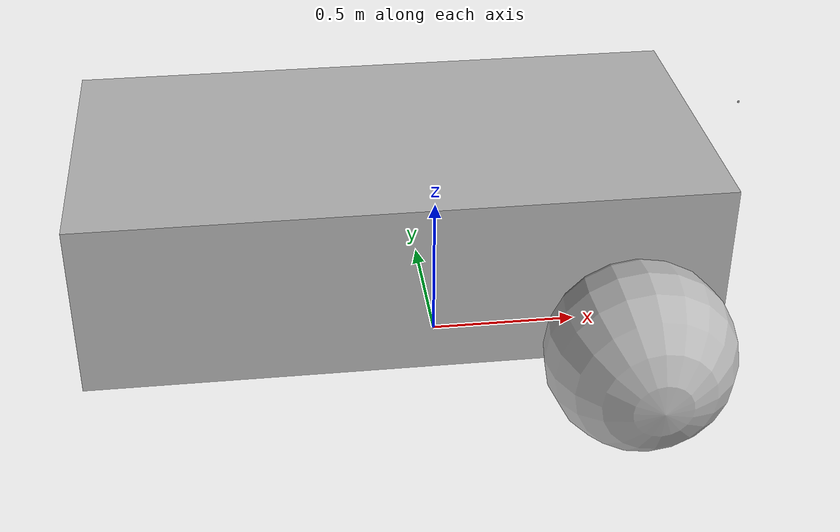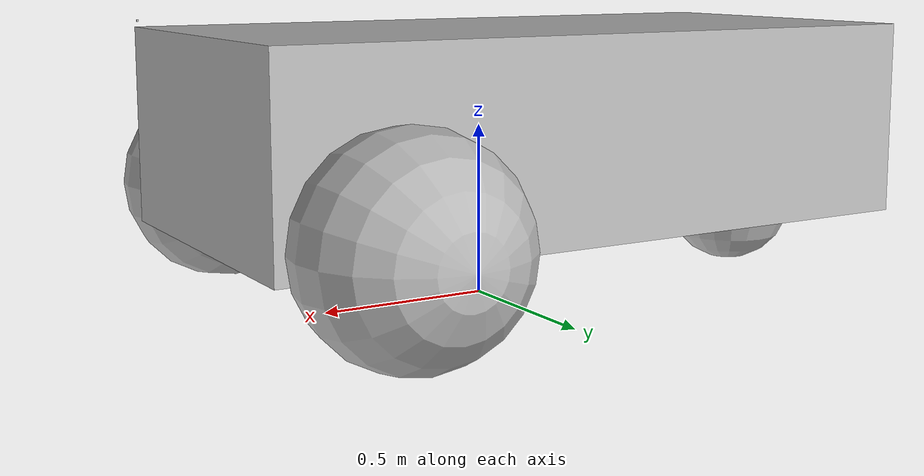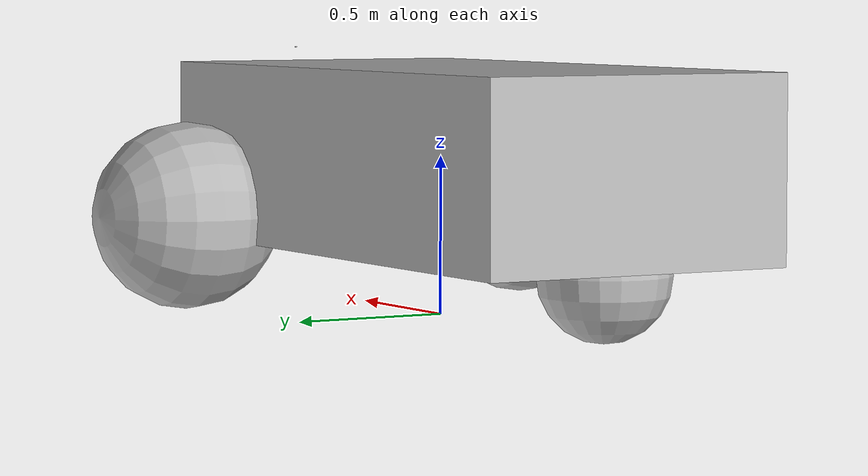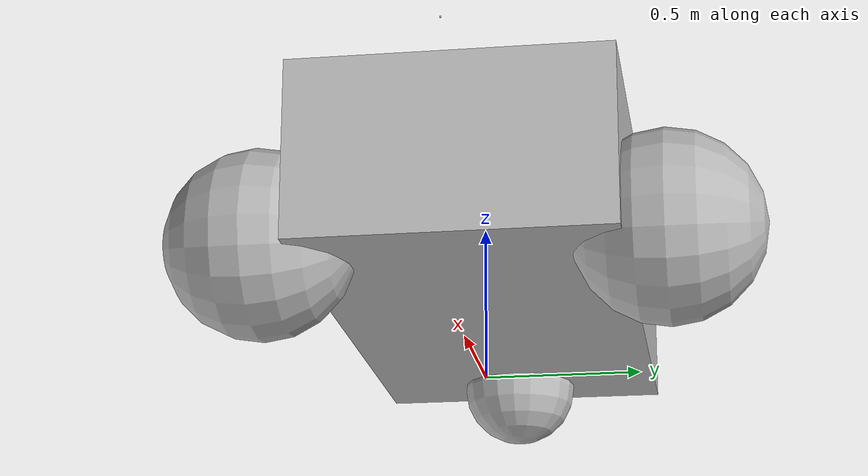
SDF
<?xml version="1.0"?>
<sdf version="1.6">
    <model name="vehicle">
			<pose>
				0 0 0.325 0 -0 0
			</pose>
			<link name="chassis">
				<pose>
					-0.151427 -0 0.175 0 -0 0
				</pose>
				<inertial>
					<mass>
						1.14395
					</mass>
					<inertia>
						<ixx>
							0.126164
						</ixx>
						<ixy>
							0
						</ixy>
						<ixz>
							0
						</ixz>
						<iyy>
							0.416519
						</iyy>
						<iyz>
							0
						</iyz>
						<izz>
							0.481014
						</izz>
					</inertia>
				</inertial>
				<visual name="visual">
					<geometry>
						<box>
							<size>
								2.01142 1 0.568726
							</size>
						</box>
					</geometry>
				</visual>
				<collision name="collision">
					<geometry>
						<box>
							<size>
								2.01142 1 0.568726
							</size>
						</box>
					</geometry>
				</collision>
			</link>
			<link name="left_wheel">
				<pose>
					0.554283 0.625029 -0.025 -1.5707 0 0
				</pose>
				<inertial>
					<mass>
						2
					</mass>
					<inertia>
						<ixx>
							0.145833
						</ixx>
						<ixy>
							0
						</ixy>
						<ixz>
							0
						</ixz>
						<iyy>
							0.145833
						</iyy>
						<iyz>
							0
						</iyz>
						<izz>
							0.125
						</izz>
					</inertia>
				</inertial>
				<visual name="visual">
					<geometry>
						<sphere>
							<radius>
								0.3
							</radius>
						</sphere>
					</geometry>
				</visual>
				<collision name="collision">
					<geometry>
						<sphere>
							<radius>
								0.3
							</radius>
						</sphere>
					</geometry>
					<surface>
						<friction>
							<ode>
								<mu>
									1
								</mu>
								<mu2>
									1
								</mu2>
								<slip1>
									0
								</slip1>
								<slip2>
									0
								</slip2>
							</ode>
						</friction>
						<contact>
							<ode>
								<soft_cfm>
									0
								</soft_cfm>
								<soft_erp>
									0.2
								</soft_erp>
								<kp>
									1e+13
								</kp>
								<kd>
									1
								</kd>
								<max_vel>
									0.01
								</max_vel>
								<min_depth>
									0.01
								</min_depth>
							</ode>
						</contact>
					</surface>
				</collision>
			</link>
			<link name="right_wheel">
				<pose>
					0.554282 -0.625029 -0.025 -1.5707 0 0
				</pose>
				<inertial>
					<mass>
						2
					</mass>
					<inertia>
						<ixx>
							0.145833
						</ixx>
						<ixy>
							0
						</ixy>
						<ixz>
							0
						</ixz>
						<iyy>
							0.145833
						</iyy>
						<iyz>
							0
						</iyz>
						<izz>
							0.125
						</izz>
					</inertia>
				</inertial>
				<visual name="visual">
					<geometry>
						<sphere>
							<radius>
								0.3
							</radius>
						</sphere>
					</geometry>
				</visual>
				<collision name="collision">
					<geometry>
						<sphere>
							<radius>
								0.3
							</radius>
						</sphere>
					</geometry>
					<surface>
						<friction>
							<ode>
								<mu>
									1
								</mu>
								<mu2>
									1
								</mu2>
								<slip1>
									0
								</slip1>
								<slip2>
									0
								</slip2>
							</ode>
						</friction>
						<contact>
							<ode>
								<soft_cfm>
									0
								</soft_cfm>
								<soft_erp>
									0.2
								</soft_erp>
								<kp>
									1e+13
								</kp>
								<kd>
									1
								</kd>
								<max_vel>
									0.01
								</max_vel>
								<min_depth>
									0.01
								</min_depth>
							</ode>
						</contact>
					</surface>
				</collision>
			</link>
			<link name="caster">
				<pose>
					-0.957138 -0 -0.125 0 -0 0
				</pose>
				<inertial>
					<mass>
						1
					</mass>
					<inertia>
						<ixx>
							0.1
						</ixx>
						<ixy>
							0
						</ixy>
						<ixz>
							0
						</ixz>
						<iyy>
							0.1
						</iyy>
						<iyz>
							0
						</iyz>
						<izz>
							0.1
						</izz>
					</inertia>
				</inertial>
				<visual name="visual">
					<geometry>
						<sphere>
							<radius>
								0.2
							</radius>
						</sphere>
					</geometry>
				</visual>
				<collision name="collision">
					<geometry>
						<sphere>
							<radius>
								0.2
							</radius>
						</sphere>
					</geometry>
				</collision>
			</link>
			<link name="camera_link">
				<pose frame="">
					1 0 0.5 0 -0 0
				</pose>
				<inertial>
					<inertia>
						<ixx>
							1
						</ixx>
						<ixy>
							0
						</ixy>
						<ixz>
							0
						</ixz>
						<iyy>
							1
						</iyy>
						<iyz>
							0
						</iyz>
						<izz>
							1
						</izz>
					</inertia>
					<mass>
						1.0
					</mass>
				</inertial>
				<collision name="my_collision">
					<pose>
						0 0 0.5 0 0 0
					</pose>
					<geometry>
						<box>
							<size>
								1 1 1
							</size>
						</box>
					</geometry>
				</collision>
				<visual name="my_visual">
					<geometry>
						<box>
							<size>
								0.005 0.005 0.005
							</size>
						</box>
					</geometry>
				</visual>
				<sensor type="camera" name="my_camera">
					<camera>
						<horizontal_fov>
							2.547
						</horizontal_fov>
						<image>
							<width>
								800
							</width>
							<height>
								600
							</height>
						</image>
						<clip>
							<near>
								0.01
							</near>
							<far>
								100
							</far>
						</clip>
					</camera>
					<always_on>
						1
					</always_on>
					<update_rate>
						10
					</update_rate>
					<visualize>
						true
					</visualize>
					<plugin name="camera_controller" filename="libgazebo_ros_camera.so">
						<alwaysOn>
							true
						</alwaysOn>
						<updateRate>
							0.0
						</updateRate>
						<cameraName>
							vehicle_camera
						</cameraName>
						<imageTopicName>
							image_raw
						</imageTopicName>
						<cameraInfoTopicName>
							camera_info
						</cameraInfoTopicName>
						<frameName>
							camera_link
						</frameName>
						<hackBaseline>
							0.07
						</hackBaseline>
						<distortionK1>
							0.0
						</distortionK1>
						<distortionK2>
							0.0
						</distortionK2>
						<distortionK3>
							0.0
						</distortionK3>
						<distortionT1>
							0.0
						</distortionT1>
						<distortionT2>
							0.0
						</distortionT2>
					</plugin>
				</sensor>
			</link>
			<joint name="camera_joint" type="fixed">
				<child>
					camera_link
				</child>
				<parent>
					chassis
				</parent>
			</joint>
			<joint name="left_wheel_joint" type="revolute">
				<parent>
					chassis
				</parent>
				<child>
					left_wheel
				</child>
				<axis>
					<xyz>
						0 0 1
					</xyz>
					<limit>
						<lower>
							-1.79769e+308
						</lower>
						<upper>
							1.79769e+308
						</upper>
					</limit>
				</axis>
			</joint>
			<joint name="right_wheel_joint" type="revolute">
				<parent>
					chassis
				</parent>
				<child>
					right_wheel
				</child>
				<axis>
					<xyz>
						0 0 1
					</xyz>
					<limit>
						<lower>
							-1.79769e+308
						</lower>
						<upper>
							1.79769e+308
						</upper>
					</limit>
				</axis>
			</joint>
			<joint name="caster_wheel" type="ball">
				<parent>
					chassis
				</parent>
				<child>
					caster
				</child>
			</joint>
			<plugin name="differential_drive_controller" filename="libgazebo_ros_diff_drive2.so">
				<robotNamespace />
				<alwaysOn>
					true
				</alwaysOn>
				<updateRate>
					10
				</updateRate>
				<legacyMode>
					true
				</legacyMode>
				<leftJoint>
					left_wheel_joint
				</leftJoint>
				<rightJoint>
					right_wheel_joint
				</rightJoint>
				<wheelSeparation>
					0.5380
				</wheelSeparation>
				<wheelDiameter>
					0.2410
				</wheelDiameter>
				<torque>
					20
				</torque>
				<commandTopic>
					cmd_vel
				</commandTopic>
				<odometryTopic>
					odom
				</odometryTopic>
				<odometryFrame>
					odom
				</odometryFrame>
				<robotBaseFrame>
					chassis
				</robotBaseFrame>
				<publishWheelTF>
					false
				</publishWheelTF>
				<publishWheelJointState>
					false
				</publishWheelJointState>
				<rosDebugLevel>
					na
				</rosDebugLevel>
				<wheelAcceleration>
					0
				</wheelAcceleration>
				<wheelTorque>
					5
				</wheelTorque>
				<odometrySource>
					world
				</odometrySource>
				<publishTf>
					1
				</publishTf>
			</plugin>
		</model>
</sdf>
